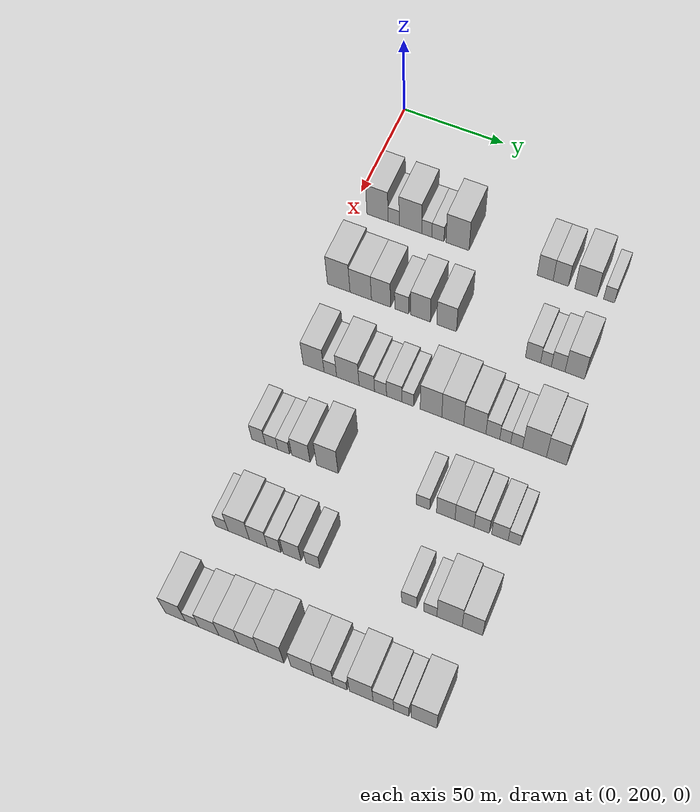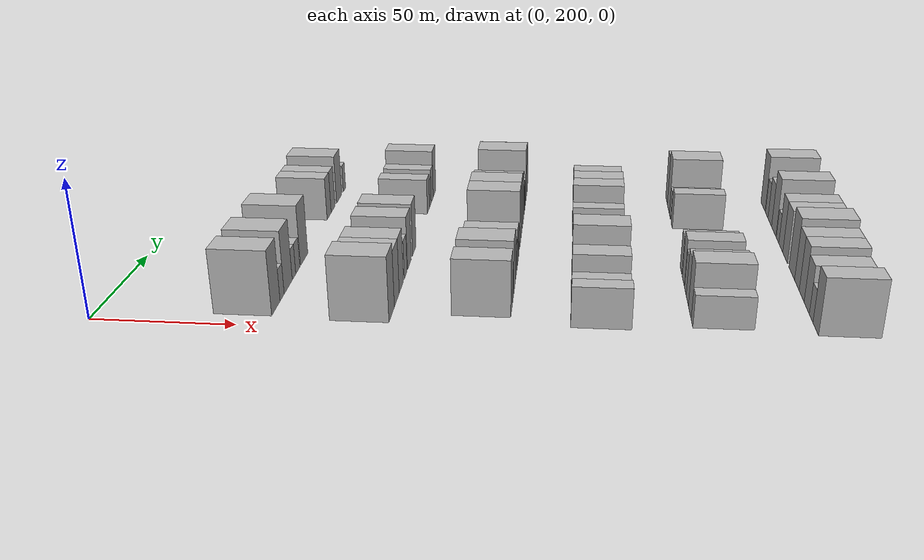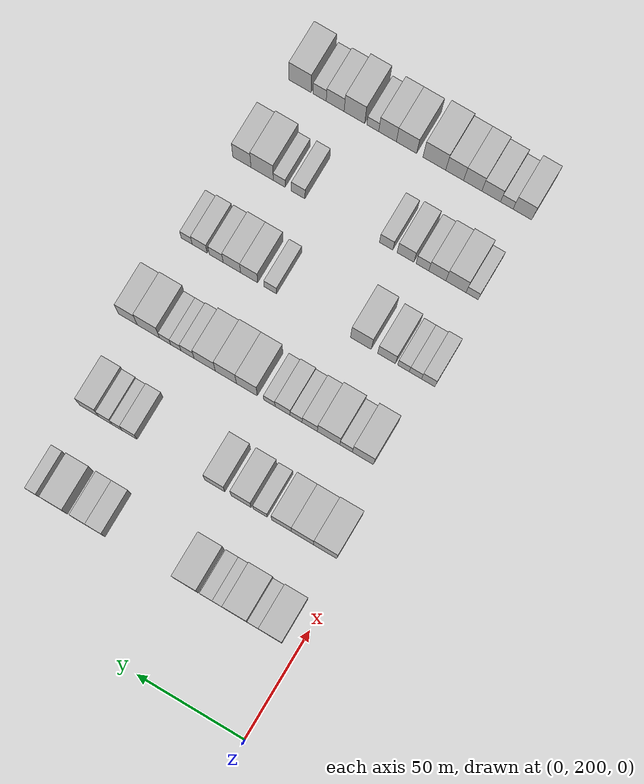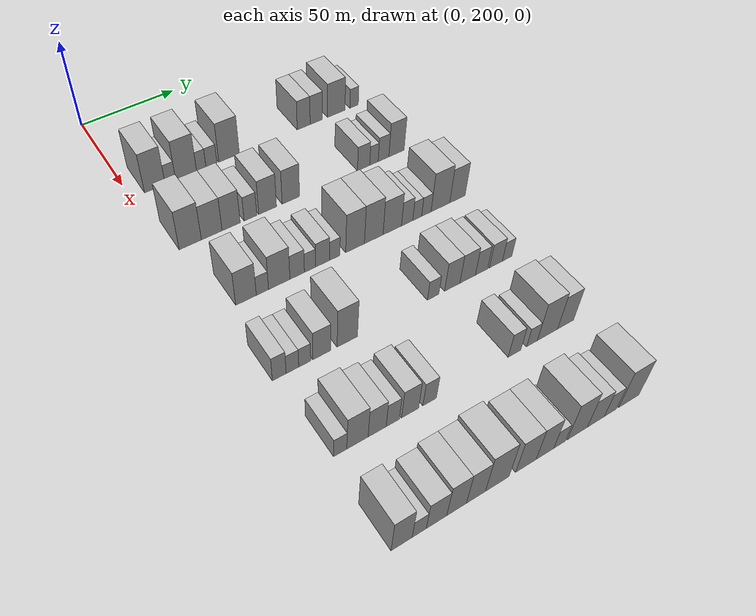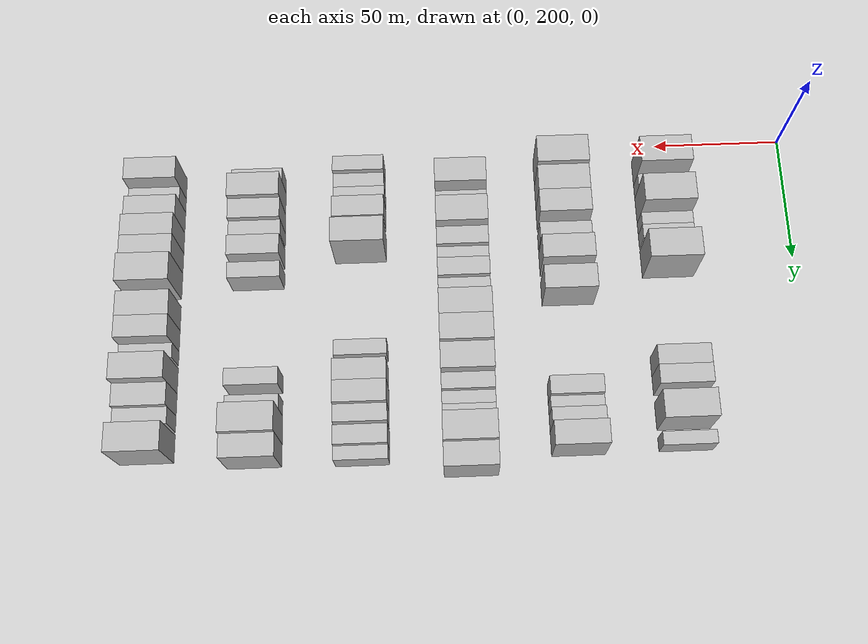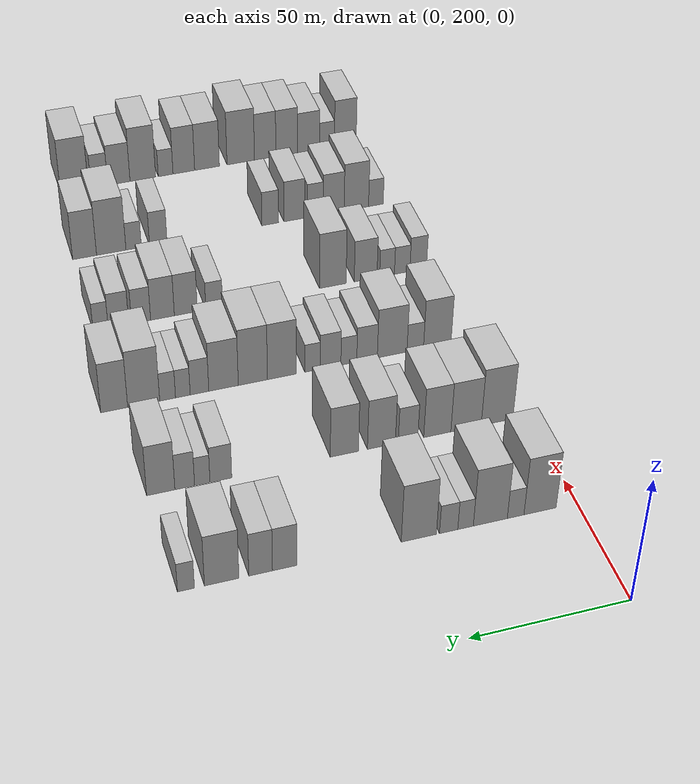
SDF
<sdf version="1.6">
 <world name="default">
  <model name="building_90">
   <static>1</static>
   <pose>50.0000 212.1653 0 0.000000 0.000000 0.000000</pose>
   <link name="link">
    <pose>0 0 12.00 0 0 0</pose>
    <collision name="collision"><geometry><box><size>20.0000 10.5243 24.0000</size></box></geometry></collision>
    <visual name="visual">
     <cast_shadows>0</cast_shadows>
     <geometry><box><size>20.0000 10.5243 24.0000</size></box></geometry>
     <material>
      <script>
       <uri>model://HANNAS_wall/materials/scripts</uri>
       <uri>model://HANNAS_wall/materials/textures</uri>
       <name>vrc/HANNAS_wall</name>
      </script>
     </material>
    </visual>
   </link>
  </model>
  <model name="building_91">
   <static>1</static>
   <pose>50.0000 220.1326 0 0.000000 0.000000 0.000000</pose>
   <link name="link">
    <pose>0 0 6.00 0 0 0</pose>
    <collision name="collision"><geometry><box><size>20.0000 5.4104 12.0000</size></box></geometry></collision>
    <visual name="visual">
     <cast_shadows>0</cast_shadows>
     <geometry><box><size>20.0000 5.4104 12.0000</size></box></geometry>
     <material>
      <script>
       <uri>model://HANNAS_wall/materials/scripts</uri>
       <uri>model://HANNAS_wall/materials/textures</uri>
       <name>vrc/HANNAS_wall</name>
      </script>
     </material>
    </visual>
   </link>
  </model>
  <model name="building_92">
   <static>1</static>
   <pose>50.0000 228.3330 0 0.000000 0.000000 0.000000</pose>
   <link name="link">
    <pose>0 0 12.00 0 0 0</pose>
    <collision name="collision"><geometry><box><size>20.0000 10.9905 24.0000</size></box></geometry></collision>
    <visual name="visual">
     <cast_shadows>0</cast_shadows>
     <geometry><box><size>20.0000 10.9905 24.0000</size></box></geometry>
     <material>
      <script>
       <uri>model://HANNAS_wall/materials/scripts</uri>
       <uri>model://HANNAS_wall/materials/textures</uri>
       <name>vrc/HANNAS_wall</name>
      </script>
     </material>
    </visual>
   </link>
  </model>
  <model name="building_93">
   <static>1</static>
   <pose>50.0000 236.3212 0 0.000000 0.000000 0.000000</pose>
   <link name="link">
    <pose>0 0 6.00 0 0 0</pose>
    <collision name="collision"><geometry><box><size>20.0000 4.9857 12.0000</size></box></geometry></collision>
    <visual name="visual">
     <cast_shadows>0</cast_shadows>
     <geometry><box><size>20.0000 4.9857 12.0000</size></box></geometry>
     <material>
      <script>
       <uri>model://HANNAS_wall/materials/scripts</uri>
       <uri>model://HANNAS_wall/materials/textures</uri>
       <name>vrc/HANNAS_wall</name>
      </script>
     </material>
    </visual>
   </link>
  </model>
  <model name="building_94">
   <static>1</static>
   <pose>50.0000 241.7361 0 0.000000 0.000000 0.000000</pose>
   <link name="link">
    <pose>0 0 6.00 0 0 0</pose>
    <collision name="collision"><geometry><box><size>20.0000 5.8442 12.0000</size></box></geometry></collision>
    <visual name="visual">
     <cast_shadows>0</cast_shadows>
     <geometry><box><size>20.0000 5.8442 12.0000</size></box></geometry>
     <material>
      <script>
       <uri>model://HANNAS_wall/materials/scripts</uri>
       <uri>model://HANNAS_wall/materials/textures</uri>
       <name>vrc/HANNAS_wall</name>
      </script>
     </material>
    </visual>
   </link>
  </model>
  <model name="building_95">
   <static>1</static>
   <pose>50.0000 251.2319 0 0.000000 0.000000 0.000000</pose>
   <link name="link">
    <pose>0 0 12.00 0 0 0</pose>
    <collision name="collision"><geometry><box><size>20.0000 11.1474 24.0000</size></box></geometry></collision>
    <visual name="visual">
     <cast_shadows>0</cast_shadows>
     <geometry><box><size>20.0000 11.1474 24.0000</size></box></geometry>
     <material>
      <script>
       <uri>model://HANNAS_wall/materials/scripts</uri>
       <uri>model://HANNAS_wall/materials/textures</uri>
       <name>vrc/HANNAS_wall</name>
      </script>
     </material>
    </visual>
   </link>
  </model>
  <model name="building_96">
   <static>1</static>
   <pose>50.0000 293.0761 0 0.000000 0.000000 0.000000</pose>
   <link name="link">
    <pose>0 0 9.00 0 0 0</pose>
    <collision name="collision"><geometry><box><size>20.0000 7.5137 18.0000</size></box></geometry></collision>
    <visual name="visual">
     <cast_shadows>0</cast_shadows>
     <geometry><box><size>20.0000 7.5137 18.0000</size></box></geometry>
     <material>
      <script>
       <uri>model://HANNAS_wall/materials/scripts</uri>
       <uri>model://HANNAS_wall/materials/textures</uri>
       <name>vrc/HANNAS_wall</name>
      </script>
     </material>
    </visual>
   </link>
  </model>
  <model name="building_97">
   <static>1</static>
   <pose>50.0000 300.4410 0 0.000000 0.000000 0.000000</pose>
   <link name="link">
    <pose>0 0 9.00 0 0 0</pose>
    <collision name="collision"><geometry><box><size>20.0000 7.2160 18.0000</size></box></geometry></collision>
    <visual name="visual">
     <cast_shadows>0</cast_shadows>
     <geometry><box><size>20.0000 7.2160 18.0000</size></box></geometry>
     <material>
      <script>
       <uri>model://HANNAS_wall/materials/scripts</uri>
       <uri>model://HANNAS_wall/materials/textures</uri>
       <name>vrc/HANNAS_wall</name>
      </script>
     </material>
    </visual>
   </link>
  </model>
  <model name="building_98">
   <static>1</static>
   <pose>50.0000 312.2567 0 0.000000 0.000000 0.000000</pose>
   <link name="link">
    <pose>0 0 10.50 0 0 0</pose>
    <collision name="collision"><geometry><box><size>20.0000 10.4154 21.0000</size></box></geometry></collision>
    <visual name="visual">
     <cast_shadows>0</cast_shadows>
     <geometry><box><size>20.0000 10.4154 21.0000</size></box></geometry>
     <material>
      <script>
       <uri>model://HANNAS_wall/materials/scripts</uri>
       <uri>model://HANNAS_wall/materials/textures</uri>
       <name>vrc/HANNAS_wall</name>
      </script>
     </material>
    </visual>
   </link>
  </model>
  <model name="building_99">
   <static>1</static>
   <pose>50.0000 323.0105 0 0.000000 0.000000 0.000000</pose>
   <link name="link">
    <pose>0 0 6.00 0 0 0</pose>
    <collision name="collision"><geometry><box><size>20.0000 5.0921 12.0000</size></box></geometry></collision>
    <visual name="visual">
     <cast_shadows>0</cast_shadows>
     <geometry><box><size>20.0000 5.0921 12.0000</size></box></geometry>
     <material>
      <script>
       <uri>model://HANNAS_wall/materials/scripts</uri>
       <uri>model://HANNAS_wall/materials/textures</uri>
       <name>vrc/HANNAS_wall</name>
      </script>
     </material>
    </visual>
   </link>
  </model>
  <model name="building_230">
   <static>1</static>
   <pose>90.0000 210.7653 0 0.000000 0.000000 0.000000</pose>
   <link name="link">
    <pose>0 0 12.00 0 0 0</pose>
    <collision name="collision"><geometry><box><size>20.0000 10.8817 24.0000</size></box></geometry></collision>
    <visual name="visual">
     <cast_shadows>0</cast_shadows>
     <geometry><box><size>20.0000 10.8817 24.0000</size></box></geometry>
     <material>
      <script>
       <uri>model://HANNAS_wall/materials/scripts</uri>
       <uri>model://HANNAS_wall/materials/textures</uri>
       <name>vrc/HANNAS_wall</name>
      </script>
     </material>
    </visual>
   </link>
  </model>
  <model name="building_231">
   <static>1</static>
   <pose>90.0000 221.3606 0 0.000000 0.000000 0.000000</pose>
   <link name="link">
    <pose>0 0 10.50 0 0 0</pose>
    <collision name="collision"><geometry><box><size>20.0000 10.3088 21.0000</size></box></geometry></collision>
    <visual name="visual">
     <cast_shadows>0</cast_shadows>
     <geometry><box><size>20.0000 10.3088 21.0000</size></box></geometry>
     <material>
      <script>
       <uri>model://HANNAS_wall/materials/scripts</uri>
       <uri>model://HANNAS_wall/materials/textures</uri>
       <name>vrc/HANNAS_wall</name>
      </script>
     </material>
    </visual>
   </link>
  </model>
  <model name="building_232">
   <static>1</static>
   <pose>90.0000 231.1039 0 0.000000 0.000000 0.000000</pose>
   <link name="link">
    <pose>0 0 10.50 0 0 0</pose>
    <collision name="collision"><geometry><box><size>20.0000 9.1779 21.0000</size></box></geometry></collision>
    <visual name="visual">
     <cast_shadows>0</cast_shadows>
     <geometry><box><size>20.0000 9.1779 21.0000</size></box></geometry>
     <material>
      <script>
       <uri>model://HANNAS_wall/materials/scripts</uri>
       <uri>model://HANNAS_wall/materials/textures</uri>
       <name>vrc/HANNAS_wall</name>
      </script>
     </material>
    </visual>
   </link>
  </model>
  <model name="building_233">
   <static>1</static>
   <pose>90.0000 240.9632 0 0.000000 0.000000 0.000000</pose>
   <link name="link">
    <pose>0 0 7.50 0 0 0</pose>
    <collision name="collision"><geometry><box><size>20.0000 6.5408 15.0000</size></box></geometry></collision>
    <visual name="visual">
     <cast_shadows>0</cast_shadows>
     <geometry><box><size>20.0000 6.5408 15.0000</size></box></geometry>
     <material>
      <script>
       <uri>model://HANNAS_wall/materials/scripts</uri>
       <uri>model://HANNAS_wall/materials/textures</uri>
       <name>vrc/HANNAS_wall</name>
      </script>
     </material>
    </visual>
   </link>
  </model>
  <model name="building_234">
   <static>1</static>
   <pose>90.0000 249.8733 0 0.000000 0.000000 0.000000</pose>
   <link name="link">
    <pose>0 0 10.50 0 0 0</pose>
    <collision name="collision"><geometry><box><size>20.0000 9.2793 21.0000</size></box></geometry></collision>
    <visual name="visual">
     <cast_shadows>0</cast_shadows>
     <geometry><box><size>20.0000 9.2793 21.0000</size></box></geometry>
     <material>
      <script>
       <uri>model://HANNAS_wall/materials/scripts</uri>
       <uri>model://HANNAS_wall/materials/textures</uri>
       <name>vrc/HANNAS_wall</name>
      </script>
     </material>
    </visual>
   </link>
  </model>
  <model name="building_235">
   <static>1</static>
   <pose>90.0000 262.1685 0 0.000000 0.000000 0.000000</pose>
   <link name="link">
    <pose>0 0 10.50 0 0 0</pose>
    <collision name="collision"><geometry><box><size>20.0000 9.3110 21.0000</size></box></geometry></collision>
    <visual name="visual">
     <cast_shadows>0</cast_shadows>
     <geometry><box><size>20.0000 9.3110 21.0000</size></box></geometry>
     <material>
      <script>
       <uri>model://HANNAS_wall/materials/scripts</uri>
       <uri>model://HANNAS_wall/materials/textures</uri>
       <name>vrc/HANNAS_wall</name>
      </script>
     </material>
    </visual>
   </link>
  </model>
  <model name="building_236">
   <static>1</static>
   <pose>90.0000 302.2914 0 0.000000 0.000000 0.000000</pose>
   <link name="link">
    <pose>0 0 7.50 0 0 0</pose>
    <collision name="collision"><geometry><box><size>20.0000 6.9783 15.0000</size></box></geometry></collision>
    <visual name="visual">
     <cast_shadows>0</cast_shadows>
     <geometry><box><size>20.0000 6.9783 15.0000</size></box></geometry>
     <material>
      <script>
       <uri>model://HANNAS_wall/materials/scripts</uri>
       <uri>model://HANNAS_wall/materials/textures</uri>
       <name>vrc/HANNAS_wall</name>
      </script>
     </material>
    </visual>
   </link>
  </model>
  <model name="building_237">
   <static>1</static>
   <pose>90.0000 308.2313 0 0.000000 0.000000 0.000000</pose>
   <link name="link">
    <pose>0 0 6.00 0 0 0</pose>
    <collision name="collision"><geometry><box><size>20.0000 4.9016 12.0000</size></box></geometry></collision>
    <visual name="visual">
     <cast_shadows>0</cast_shadows>
     <geometry><box><size>20.0000 4.9016 12.0000</size></box></geometry>
     <material>
      <script>
       <uri>model://HANNAS_wall/materials/scripts</uri>
       <uri>model://HANNAS_wall/materials/textures</uri>
       <name>vrc/HANNAS_wall</name>
      </script>
     </material>
    </visual>
   </link>
  </model>
  <model name="building_238">
   <static>1</static>
   <pose>90.0000 313.8000 0 0.000000 0.000000 0.000000</pose>
   <link name="link">
    <pose>0 0 7.50 0 0 0</pose>
    <collision name="collision"><geometry><box><size>20.0000 6.2359 15.0000</size></box></geometry></collision>
    <visual name="visual">
     <cast_shadows>0</cast_shadows>
     <geometry><box><size>20.0000 6.2359 15.0000</size></box></geometry>
     <material>
      <script>
       <uri>model://HANNAS_wall/materials/scripts</uri>
       <uri>model://HANNAS_wall/materials/textures</uri>
       <name>vrc/HANNAS_wall</name>
      </script>
     </material>
    </visual>
   </link>
  </model>
  <model name="building_239">
   <static>1</static>
   <pose>90.0000 321.3830 0 0.000000 0.000000 0.000000</pose>
   <link name="link">
    <pose>0 0 10.50 0 0 0</pose>
    <collision name="collision"><geometry><box><size>20.0000 8.9300 21.0000</size></box></geometry></collision>
    <visual name="visual">
     <cast_shadows>0</cast_shadows>
     <geometry><box><size>20.0000 8.9300 21.0000</size></box></geometry>
     <material>
      <script>
       <uri>model://HANNAS_wall/materials/scripts</uri>
       <uri>model://HANNAS_wall/materials/textures</uri>
       <name>vrc/HANNAS_wall</name>
      </script>
     </material>
    </visual>
   </link>
  </model>
  <model name="building_367">
   <static>1</static>
   <pose>130.0000 216.8760 0 0.000000 0.000000 0.000000</pose>
   <link name="link">
    <pose>0 0 10.50 0 0 0</pose>
    <collision name="collision"><geometry><box><size>20.0000 9.8227 21.0000</size></box></geometry></collision>
    <visual name="visual">
     <cast_shadows>0</cast_shadows>
     <geometry><box><size>20.0000 9.8227 21.0000</size></box></geometry>
     <material>
      <script>
       <uri>model://HANNAS_wall/materials/scripts</uri>
       <uri>model://HANNAS_wall/materials/textures</uri>
       <name>vrc/HANNAS_wall</name>
      </script>
     </material>
    </visual>
   </link>
  </model>
  <model name="building_368">
   <static>1</static>
   <pose>130.0000 224.7224 0 0.000000 0.000000 0.000000</pose>
   <link name="link">
    <pose>0 0 6.00 0 0 0</pose>
    <collision name="collision"><geometry><box><size>20.0000 5.8702 12.0000</size></box></geometry></collision>
    <visual name="visual">
     <cast_shadows>0</cast_shadows>
     <geometry><box><size>20.0000 5.8702 12.0000</size></box></geometry>
     <material>
      <script>
       <uri>model://HANNAS_wall/materials/scripts</uri>
       <uri>model://HANNAS_wall/materials/textures</uri>
       <name>vrc/HANNAS_wall</name>
      </script>
     </material>
    </visual>
   </link>
  </model>
  <model name="building_369">
   <static>1</static>
   <pose>130.0000 232.8961 0 0.000000 0.000000 0.000000</pose>
   <link name="link">
    <pose>0 0 10.50 0 0 0</pose>
    <collision name="collision"><geometry><box><size>20.0000 10.4772 21.0000</size></box></geometry></collision>
    <visual name="visual">
     <cast_shadows>0</cast_shadows>
     <geometry><box><size>20.0000 10.4772 21.0000</size></box></geometry>
     <material>
      <script>
       <uri>model://HANNAS_wall/materials/scripts</uri>
       <uri>model://HANNAS_wall/materials/textures</uri>
       <name>vrc/HANNAS_wall</name>
      </script>
     </material>
    </visual>
   </link>
  </model>
  <model name="building_370">
   <static>1</static>
   <pose>130.0000 241.7338 0 0.000000 0.000000 0.000000</pose>
   <link name="link">
    <pose>0 0 7.50 0 0 0</pose>
    <collision name="collision"><geometry><box><size>20.0000 7.1983 15.0000</size></box></geometry></collision>
    <visual name="visual">
     <cast_shadows>0</cast_shadows>
     <geometry><box><size>20.0000 7.1983 15.0000</size></box></geometry>
     <material>
      <script>
       <uri>model://HANNAS_wall/materials/scripts</uri>
       <uri>model://HANNAS_wall/materials/textures</uri>
       <name>vrc/HANNAS_wall</name>
      </script>
     </material>
    </visual>
   </link>
  </model>
  <model name="building_371">
   <static>1</static>
   <pose>130.0000 248.1066 0 0.000000 0.000000 0.000000</pose>
   <link name="link">
    <pose>0 0 6.00 0 0 0</pose>
    <collision name="collision"><geometry><box><size>20.0000 5.5472 12.0000</size></box></geometry></collision>
    <visual name="visual">
     <cast_shadows>0</cast_shadows>
     <geometry><box><size>20.0000 5.5472 12.0000</size></box></geometry>
     <material>
      <script>
       <uri>model://HANNAS_wall/materials/scripts</uri>
       <uri>model://HANNAS_wall/materials/textures</uri>
       <name>vrc/HANNAS_wall</name>
      </script>
     </material>
    </visual>
   </link>
  </model>
  <model name="building_372">
   <static>1</static>
   <pose>130.0000 254.4656 0 0.000000 0.000000 0.000000</pose>
   <link name="link">
    <pose>0 0 7.50 0 0 0</pose>
    <collision name="collision"><geometry><box><size>20.0000 7.1709 15.0000</size></box></geometry></collision>
    <visual name="visual">
     <cast_shadows>0</cast_shadows>
     <geometry><box><size>20.0000 7.1709 15.0000</size></box></geometry>
     <material>
      <script>
       <uri>model://HANNAS_wall/materials/scripts</uri>
       <uri>model://HANNAS_wall/materials/textures</uri>
       <name>vrc/HANNAS_wall</name>
      </script>
     </material>
    </visual>
   </link>
  </model>
  <model name="building_373">
   <static>1</static>
   <pose>130.0000 260.7199 0 0.000000 0.000000 0.000000</pose>
   <link name="link">
    <pose>0 0 6.00 0 0 0</pose>
    <collision name="collision"><geometry><box><size>20.0000 5.3376 12.0000</size></box></geometry></collision>
    <visual name="visual">
     <cast_shadows>0</cast_shadows>
     <geometry><box><size>20.0000 5.3376 12.0000</size></box></geometry>
     <material>
      <script>
       <uri>model://HANNAS_wall/materials/scripts</uri>
       <uri>model://HANNAS_wall/materials/textures</uri>
       <name>vrc/HANNAS_wall</name>
      </script>
     </material>
    </visual>
   </link>
  </model>
  <model name="building_374">
   <static>1</static>
   <pose>130.0000 271.3065 0 0.000000 0.000000 0.000000</pose>
   <link name="link">
    <pose>0 0 12.00 0 0 0</pose>
    <collision name="collision"><geometry><box><size>20.0000 9.8356 24.0000</size></box></geometry></collision>
    <visual name="visual">
     <cast_shadows>0</cast_shadows>
     <geometry><box><size>20.0000 9.8356 24.0000</size></box></geometry>
     <material>
      <script>
       <uri>model://HANNAS_wall/materials/scripts</uri>
       <uri>model://HANNAS_wall/materials/textures</uri>
       <name>vrc/HANNAS_wall</name>
      </script>
     </material>
    </visual>
   </link>
  </model>
  <model name="building_375">
   <static>1</static>
   <pose>130.0000 281.1963 0 0.000000 0.000000 0.000000</pose>
   <link name="link">
    <pose>0 0 12.00 0 0 0</pose>
    <collision name="collision"><geometry><box><size>20.0000 9.9439 24.0000</size></box></geometry></collision>
    <visual name="visual">
     <cast_shadows>0</cast_shadows>
     <geometry><box><size>20.0000 9.9439 24.0000</size></box></geometry>
     <material>
      <script>
       <uri>model://HANNAS_wall/materials/scripts</uri>
       <uri>model://HANNAS_wall/materials/textures</uri>
       <name>vrc/HANNAS_wall</name>
      </script>
     </material>
    </visual>
   </link>
  </model>
  <model name="building_376">
   <static>1</static>
   <pose>130.0000 291.1658 0 0.000000 0.000000 0.000000</pose>
   <link name="link">
    <pose>0 0 10.50 0 0 0</pose>
    <collision name="collision"><geometry><box><size>20.0000 9.9951 21.0000</size></box></geometry></collision>
    <visual name="visual">
     <cast_shadows>0</cast_shadows>
     <geometry><box><size>20.0000 9.9951 21.0000</size></box></geometry>
     <material>
      <script>
       <uri>model://HANNAS_wall/materials/scripts</uri>
       <uri>model://HANNAS_wall/materials/textures</uri>
       <name>vrc/HANNAS_wall</name>
      </script>
     </material>
    </visual>
   </link>
  </model>
  <model name="building_377">
   <static>1</static>
   <pose>130.0000 299.2905 0 0.000000 0.000000 0.000000</pose>
   <link name="link">
    <pose>0 0 7.50 0 0 0</pose>
    <collision name="collision"><geometry><box><size>20.0000 6.2543 15.0000</size></box></geometry></collision>
    <visual name="visual">
     <cast_shadows>0</cast_shadows>
     <geometry><box><size>20.0000 6.2543 15.0000</size></box></geometry>
     <material>
      <script>
       <uri>model://HANNAS_wall/materials/scripts</uri>
       <uri>model://HANNAS_wall/materials/textures</uri>
       <name>vrc/HANNAS_wall</name>
      </script>
     </material>
    </visual>
   </link>
  </model>
  <model name="building_378">
   <static>1</static>
   <pose>130.0000 304.8769 0 0.000000 0.000000 0.000000</pose>
   <link name="link">
    <pose>0 0 6.00 0 0 0</pose>
    <collision name="collision"><geometry><box><size>20.0000 4.9185 12.0000</size></box></geometry></collision>
    <visual name="visual">
     <cast_shadows>0</cast_shadows>
     <geometry><box><size>20.0000 4.9185 12.0000</size></box></geometry>
     <material>
      <script>
       <uri>model://HANNAS_wall/materials/scripts</uri>
       <uri>model://HANNAS_wall/materials/textures</uri>
       <name>vrc/HANNAS_wall</name>
      </script>
     </material>
    </visual>
   </link>
  </model>
  <model name="building_379">
   <static>1</static>
   <pose>130.0000 309.9766 0 0.000000 0.000000 0.000000</pose>
   <link name="link">
    <pose>0 0 6.00 0 0 0</pose>
    <collision name="collision"><geometry><box><size>20.0000 5.2808 12.0000</size></box></geometry></collision>
    <visual name="visual">
     <cast_shadows>0</cast_shadows>
     <geometry><box><size>20.0000 5.2808 12.0000</size></box></geometry>
     <material>
      <script>
       <uri>model://HANNAS_wall/materials/scripts</uri>
       <uri>model://HANNAS_wall/materials/textures</uri>
       <name>vrc/HANNAS_wall</name>
      </script>
     </material>
    </visual>
   </link>
  </model>
  <model name="building_380">
   <static>1</static>
   <pose>130.0000 317.9260 0 0.000000 0.000000 0.000000</pose>
   <link name="link">
    <pose>0 0 12.00 0 0 0</pose>
    <collision name="collision"><geometry><box><size>20.0000 10.6178 24.0000</size></box></geometry></collision>
    <visual name="visual">
     <cast_shadows>0</cast_shadows>
     <geometry><box><size>20.0000 10.6178 24.0000</size></box></geometry>
     <material>
      <script>
       <uri>model://HANNAS_wall/materials/scripts</uri>
       <uri>model://HANNAS_wall/materials/textures</uri>
       <name>vrc/HANNAS_wall</name>
      </script>
     </material>
    </visual>
   </link>
  </model>
  <model name="building_381">
   <static>1</static>
   <pose>130.0000 327.6799 0 0.000000 0.000000 0.000000</pose>
   <link name="link">
    <pose>0 0 10.50 0 0 0</pose>
    <collision name="collision"><geometry><box><size>20.0000 8.8901 21.0000</size></box></geometry></collision>
    <visual name="visual">
     <cast_shadows>0</cast_shadows>
     <geometry><box><size>20.0000 8.8901 21.0000</size></box></geometry>
     <material>
      <script>
       <uri>model://HANNAS_wall/materials/scripts</uri>
       <uri>model://HANNAS_wall/materials/textures</uri>
       <name>vrc/HANNAS_wall</name>
      </script>
     </material>
    </visual>
   </link>
  </model>
  <model name="building_502">
   <static>1</static>
   <pose>170.0000 209.8028 0 0.000000 0.000000 0.000000</pose>
   <link name="link">
    <pose>0 0 7.50 0 0 0</pose>
    <collision name="collision"><geometry><box><size>20.0000 6.2233 15.0000</size></box></geometry></collision>
    <visual name="visual">
     <cast_shadows>0</cast_shadows>
     <geometry><box><size>20.0000 6.2233 15.0000</size></box></geometry>
     <material>
      <script>
       <uri>model://HANNAS_wall/materials/scripts</uri>
       <uri>model://HANNAS_wall/materials/textures</uri>
       <name>vrc/HANNAS_wall</name>
      </script>
     </material>
    </visual>
   </link>
  </model>
  <model name="building_503">
   <static>1</static>
   <pose>170.0000 215.7873 0 0.000000 0.000000 0.000000</pose>
   <link name="link">
    <pose>0 0 6.00 0 0 0</pose>
    <collision name="collision"><geometry><box><size>20.0000 5.7457 12.0000</size></box></geometry></collision>
    <visual name="visual">
     <cast_shadows>0</cast_shadows>
     <geometry><box><size>20.0000 5.7457 12.0000</size></box></geometry>
     <material>
      <script>
       <uri>model://HANNAS_wall/materials/scripts</uri>
       <uri>model://HANNAS_wall/materials/textures</uri>
       <name>vrc/HANNAS_wall</name>
      </script>
     </material>
    </visual>
   </link>
  </model>
  <model name="building_504">
   <static>1</static>
   <pose>170.0000 221.4043 0 0.000000 0.000000 0.000000</pose>
   <link name="link">
    <pose>0 0 6.00 0 0 0</pose>
    <collision name="collision"><geometry><box><size>20.0000 5.4882 12.0000</size></box></geometry></collision>
    <visual name="visual">
     <cast_shadows>0</cast_shadows>
     <geometry><box><size>20.0000 5.4882 12.0000</size></box></geometry>
     <material>
      <script>
       <uri>model://HANNAS_wall/materials/scripts</uri>
       <uri>model://HANNAS_wall/materials/textures</uri>
       <name>vrc/HANNAS_wall</name>
      </script>
     </material>
    </visual>
   </link>
  </model>
  <model name="building_505">
   <static>1</static>
   <pose>170.0000 229.3457 0 0.000000 0.000000 0.000000</pose>
   <link name="link">
    <pose>0 0 9.00 0 0 0</pose>
    <collision name="collision"><geometry><box><size>20.0000 8.3947 18.0000</size></box></geometry></collision>
    <visual name="visual">
     <cast_shadows>0</cast_shadows>
     <geometry><box><size>20.0000 8.3947 18.0000</size></box></geometry>
     <material>
      <script>
       <uri>model://HANNAS_wall/materials/scripts</uri>
       <uri>model://HANNAS_wall/materials/textures</uri>
       <name>vrc/HANNAS_wall</name>
      </script>
     </material>
    </visual>
   </link>
  </model>
  <model name="building_506">
   <static>1</static>
   <pose>170.0000 241.4226 0 0.000000 0.000000 0.000000</pose>
   <link name="link">
    <pose>0 0 12.00 0 0 0</pose>
    <collision name="collision"><geometry><box><size>20.0000 9.7590 24.0000</size></box></geometry></collision>
    <visual name="visual">
     <cast_shadows>0</cast_shadows>
     <geometry><box><size>20.0000 9.7590 24.0000</size></box></geometry>
     <material>
      <script>
       <uri>model://HANNAS_wall/materials/scripts</uri>
       <uri>model://HANNAS_wall/materials/textures</uri>
       <name>vrc/HANNAS_wall</name>
      </script>
     </material>
    </visual>
   </link>
  </model>
  <model name="building_507">
   <static>1</static>
   <pose>170.0000 284.2374 0 0.000000 0.000000 0.000000</pose>
   <link name="link">
    <pose>0 0 6.00 0 0 0</pose>
    <collision name="collision"><geometry><box><size>20.0000 5.9569 12.0000</size></box></geometry></collision>
    <visual name="visual">
     <cast_shadows>0</cast_shadows>
     <geometry><box><size>20.0000 5.9569 12.0000</size></box></geometry>
     <material>
      <script>
       <uri>model://HANNAS_wall/materials/scripts</uri>
       <uri>model://HANNAS_wall/materials/textures</uri>
       <name>vrc/HANNAS_wall</name>
      </script>
     </material>
    </visual>
   </link>
  </model>
  <model name="building_508">
   <static>1</static>
   <pose>170.0000 294.2799 0 0.000000 0.000000 0.000000</pose>
   <link name="link">
    <pose>0 0 9.00 0 0 0</pose>
    <collision name="collision"><geometry><box><size>20.0000 8.1281 18.0000</size></box></geometry></collision>
    <visual name="visual">
     <cast_shadows>0</cast_shadows>
     <geometry><box><size>20.0000 8.1281 18.0000</size></box></geometry>
     <material>
      <script>
       <uri>model://HANNAS_wall/materials/scripts</uri>
       <uri>model://HANNAS_wall/materials/textures</uri>
       <name>vrc/HANNAS_wall</name>
      </script>
     </material>
    </visual>
   </link>
  </model>
  <model name="building_509">
   <static>1</static>
   <pose>170.0000 302.5095 0 0.000000 0.000000 0.000000</pose>
   <link name="link">
    <pose>0 0 9.00 0 0 0</pose>
    <collision name="collision"><geometry><box><size>20.0000 8.3311 18.0000</size></box></geometry></collision>
    <visual name="visual">
     <cast_shadows>0</cast_shadows>
     <geometry><box><size>20.0000 8.3311 18.0000</size></box></geometry>
     <material>
      <script>
       <uri>model://HANNAS_wall/materials/scripts</uri>
       <uri>model://HANNAS_wall/materials/textures</uri>
       <name>vrc/HANNAS_wall</name>
      </script>
     </material>
    </visual>
   </link>
  </model>
  <model name="building_510">
   <static>1</static>
   <pose>170.0000 309.9924 0 0.000000 0.000000 0.000000</pose>
   <link name="link">
    <pose>0 0 7.50 0 0 0</pose>
    <collision name="collision"><geometry><box><size>20.0000 6.6347 15.0000</size></box></geometry></collision>
    <visual name="visual">
     <cast_shadows>0</cast_shadows>
     <geometry><box><size>20.0000 6.6347 15.0000</size></box></geometry>
     <material>
      <script>
       <uri>model://HANNAS_wall/materials/scripts</uri>
       <uri>model://HANNAS_wall/materials/textures</uri>
       <name>vrc/HANNAS_wall</name>
      </script>
     </material>
    </visual>
   </link>
  </model>
  <model name="building_511">
   <static>1</static>
   <pose>170.0000 317.8950 0 0.000000 0.000000 0.000000</pose>
   <link name="link">
    <pose>0 0 7.50 0 0 0</pose>
    <collision name="collision"><geometry><box><size>20.0000 7.1706 15.0000</size></box></geometry></collision>
    <visual name="visual">
     <cast_shadows>0</cast_shadows>
     <geometry><box><size>20.0000 7.1706 15.0000</size></box></geometry>
     <material>
      <script>
       <uri>model://HANNAS_wall/materials/scripts</uri>
       <uri>model://HANNAS_wall/materials/textures</uri>
       <name>vrc/HANNAS_wall</name>
      </script>
     </material>
    </visual>
   </link>
  </model>
  <model name="building_512">
   <static>1</static>
   <pose>170.0000 324.0987 0 0.000000 0.000000 0.000000</pose>
   <link name="link">
    <pose>0 0 6.00 0 0 0</pose>
    <collision name="collision"><geometry><box><size>20.0000 5.2367 12.0000</size></box></geometry></collision>
    <visual name="visual">
     <cast_shadows>0</cast_shadows>
     <geometry><box><size>20.0000 5.2367 12.0000</size></box></geometry>
     <material>
      <script>
       <uri>model://HANNAS_wall/materials/scripts</uri>
       <uri>model://HANNAS_wall/materials/textures</uri>
       <name>vrc/HANNAS_wall</name>
      </script>
     </material>
    </visual>
   </link>
  </model>
  <model name="building_642">
   <static>1</static>
   <pose>210.0000 212.4699 0 0.000000 0.000000 0.000000</pose>
   <link name="link">
    <pose>0 0 6.00 0 0 0</pose>
    <collision name="collision"><geometry><box><size>20.0000 5.7114 12.0000</size></box></geometry></collision>
    <visual name="visual">
     <cast_shadows>0</cast_shadows>
     <geometry><box><size>20.0000 5.7114 12.0000</size></box></geometry>
     <material>
      <script>
       <uri>model://HANNAS_wall/materials/scripts</uri>
       <uri>model://HANNAS_wall/materials/textures</uri>
       <name>vrc/HANNAS_wall</name>
      </script>
     </material>
    </visual>
   </link>
  </model>
  <model name="building_643">
   <static>1</static>
   <pose>210.0000 220.0598 0 0.000000 0.000000 0.000000</pose>
   <link name="link">
    <pose>0 0 10.50 0 0 0</pose>
    <collision name="collision"><geometry><box><size>20.0000 9.4686 21.0000</size></box></geometry></collision>
    <visual name="visual">
     <cast_shadows>0</cast_shadows>
     <geometry><box><size>20.0000 9.4686 21.0000</size></box></geometry>
     <material>
      <script>
       <uri>model://HANNAS_wall/materials/scripts</uri>
       <uri>model://HANNAS_wall/materials/textures</uri>
       <name>vrc/HANNAS_wall</name>
      </script>
     </material>
    </visual>
   </link>
  </model>
  <model name="building_644">
   <static>1</static>
   <pose>210.0000 228.8368 0 0.000000 0.000000 0.000000</pose>
   <link name="link">
    <pose>0 0 9.00 0 0 0</pose>
    <collision name="collision"><geometry><box><size>20.0000 8.0855 18.0000</size></box></geometry></collision>
    <visual name="visual">
     <cast_shadows>0</cast_shadows>
     <geometry><box><size>20.0000 8.0855 18.0000</size></box></geometry>
     <material>
      <script>
       <uri>model://HANNAS_wall/materials/scripts</uri>
       <uri>model://HANNAS_wall/materials/textures</uri>
       <name>vrc/HANNAS_wall</name>
      </script>
     </material>
    </visual>
   </link>
  </model>
  <model name="building_645">
   <static>1</static>
   <pose>210.0000 235.9042 0 0.000000 0.000000 0.000000</pose>
   <link name="link">
    <pose>0 0 7.50 0 0 0</pose>
    <collision name="collision"><geometry><box><size>20.0000 6.0491 15.0000</size></box></geometry></collision>
    <visual name="visual">
     <cast_shadows>0</cast_shadows>
     <geometry><box><size>20.0000 6.0491 15.0000</size></box></geometry>
     <material>
      <script>
       <uri>model://HANNAS_wall/materials/scripts</uri>
       <uri>model://HANNAS_wall/materials/textures</uri>
       <name>vrc/HANNAS_wall</name>
      </script>
     </material>
    </visual>
   </link>
  </model>
  <model name="building_646">
   <static>1</static>
   <pose>210.0000 243.8957 0 0.000000 0.000000 0.000000</pose>
   <link name="link">
    <pose>0 0 9.00 0 0 0</pose>
    <collision name="collision"><geometry><box><size>20.0000 7.9340 18.0000</size></box></geometry></collision>
    <visual name="visual">
     <cast_shadows>0</cast_shadows>
     <geometry><box><size>20.0000 7.9340 18.0000</size></box></geometry>
     <material>
      <script>
       <uri>model://HANNAS_wall/materials/scripts</uri>
       <uri>model://HANNAS_wall/materials/textures</uri>
       <name>vrc/HANNAS_wall</name>
      </script>
     </material>
    </visual>
   </link>
  </model>
  <model name="building_647">
   <static>1</static>
   <pose>210.0000 253.0340 0 0.000000 0.000000 0.000000</pose>
   <link name="link">
    <pose>0 0 7.50 0 0 0</pose>
    <collision name="collision"><geometry><box><size>20.0000 6.3425 15.0000</size></box></geometry></collision>
    <visual name="visual">
     <cast_shadows>0</cast_shadows>
     <geometry><box><size>20.0000 6.3425 15.0000</size></box></geometry>
     <material>
      <script>
       <uri>model://HANNAS_wall/materials/scripts</uri>
       <uri>model://HANNAS_wall/materials/textures</uri>
       <name>vrc/HANNAS_wall</name>
      </script>
     </material>
    </visual>
   </link>
  </model>
  <model name="building_648">
   <static>1</static>
   <pose>210.0000 294.8965 0 0.000000 0.000000 0.000000</pose>
   <link name="link">
    <pose>0 0 7.50 0 0 0</pose>
    <collision name="collision"><geometry><box><size>20.0000 6.4608 15.0000</size></box></geometry></collision>
    <visual name="visual">
     <cast_shadows>0</cast_shadows>
     <geometry><box><size>20.0000 6.4608 15.0000</size></box></geometry>
     <material>
      <script>
       <uri>model://HANNAS_wall/materials/scripts</uri>
       <uri>model://HANNAS_wall/materials/textures</uri>
       <name>vrc/HANNAS_wall</name>
      </script>
     </material>
    </visual>
   </link>
  </model>
  <model name="building_649">
   <static>1</static>
   <pose>210.0000 303.9589 0 0.000000 0.000000 0.000000</pose>
   <link name="link">
    <pose>0 0 6.00 0 0 0</pose>
    <collision name="collision"><geometry><box><size>20.0000 5.6642 12.0000</size></box></geometry></collision>
    <visual name="visual">
     <cast_shadows>0</cast_shadows>
     <geometry><box><size>20.0000 5.6642 12.0000</size></box></geometry>
     <material>
      <script>
       <uri>model://HANNAS_wall/materials/scripts</uri>
       <uri>model://HANNAS_wall/materials/textures</uri>
       <name>vrc/HANNAS_wall</name>
      </script>
     </material>
    </visual>
   </link>
  </model>
  <model name="building_650">
   <static>1</static>
   <pose>210.0000 312.1442 0 0.000000 0.000000 0.000000</pose>
   <link name="link">
    <pose>0 0 12.00 0 0 0</pose>
    <collision name="collision"><geometry><box><size>20.0000 10.7064 24.0000</size></box></geometry></collision>
    <visual name="visual">
     <cast_shadows>0</cast_shadows>
     <geometry><box><size>20.0000 10.7064 24.0000</size></box></geometry>
     <material>
      <script>
       <uri>model://HANNAS_wall/materials/scripts</uri>
       <uri>model://HANNAS_wall/materials/textures</uri>
       <name>vrc/HANNAS_wall</name>
      </script>
     </material>
    </visual>
   </link>
  </model>
  <model name="building_651">
   <static>1</static>
   <pose>210.0000 321.8377 0 0.000000 0.000000 0.000000</pose>
   <link name="link">
    <pose>0 0 10.50 0 0 0</pose>
    <collision name="collision"><geometry><box><size>20.0000 8.6804 21.0000</size></box></geometry></collision>
    <visual name="visual">
     <cast_shadows>0</cast_shadows>
     <geometry><box><size>20.0000 8.6804 21.0000</size></box></geometry>
     <material>
      <script>
       <uri>model://HANNAS_wall/materials/scripts</uri>
       <uri>model://HANNAS_wall/materials/textures</uri>
       <name>vrc/HANNAS_wall</name>
      </script>
     </material>
    </visual>
   </link>
  </model>
  <model name="building_778">
   <static>1</static>
   <pose>250.0000 211.8377 0 0.000000 0.000000 0.000000</pose>
   <link name="link">
    <pose>0 0 10.50 0 0 0</pose>
    <collision name="collision"><geometry><box><size>20.0000 8.7903 21.0000</size></box></geometry></collision>
    <visual name="visual">
     <cast_shadows>0</cast_shadows>
     <geometry><box><size>20.0000 8.7903 21.0000</size></box></geometry>
     <material>
      <script>
       <uri>model://HANNAS_wall/materials/scripts</uri>
       <uri>model://HANNAS_wall/materials/textures</uri>
       <name>vrc/HANNAS_wall</name>
      </script>
     </material>
    </visual>
   </link>
  </model>
  <model name="building_779">
   <static>1</static>
   <pose>250.0000 219.2090 0 0.000000 0.000000 0.000000</pose>
   <link name="link">
    <pose>0 0 6.00 0 0 0</pose>
    <collision name="collision"><geometry><box><size>20.0000 5.9524 12.0000</size></box></geometry></collision>
    <visual name="visual">
     <cast_shadows>0</cast_shadows>
     <geometry><box><size>20.0000 5.9524 12.0000</size></box></geometry>
     <material>
      <script>
       <uri>model://HANNAS_wall/materials/scripts</uri>
       <uri>model://HANNAS_wall/materials/textures</uri>
       <name>vrc/HANNAS_wall</name>
      </script>
     </material>
    </visual>
   </link>
  </model>
  <model name="building_780">
   <static>1</static>
   <pose>250.0000 226.5991 0 0.000000 0.000000 0.000000</pose>
   <link name="link">
    <pose>0 0 9.00 0 0 0</pose>
    <collision name="collision"><geometry><box><size>20.0000 8.8277 18.0000</size></box></geometry></collision>
    <visual name="visual">
     <cast_shadows>0</cast_shadows>
     <geometry><box><size>20.0000 8.8277 18.0000</size></box></geometry>
     <material>
      <script>
       <uri>model://HANNAS_wall/materials/scripts</uri>
       <uri>model://HANNAS_wall/materials/textures</uri>
       <name>vrc/HANNAS_wall</name>
      </script>
     </material>
    </visual>
   </link>
  </model>
  <model name="building_781">
   <static>1</static>
   <pose>250.0000 235.3422 0 0.000000 0.000000 0.000000</pose>
   <link name="link">
    <pose>0 0 10.50 0 0 0</pose>
    <collision name="collision"><geometry><box><size>20.0000 8.6585 21.0000</size></box></geometry></collision>
    <visual name="visual">
     <cast_shadows>0</cast_shadows>
     <geometry><box><size>20.0000 8.6585 21.0000</size></box></geometry>
     <material>
      <script>
       <uri>model://HANNAS_wall/materials/scripts</uri>
       <uri>model://HANNAS_wall/materials/textures</uri>
       <name>vrc/HANNAS_wall</name>
      </script>
     </material>
    </visual>
   </link>
  </model>
  <model name="building_782">
   <static>1</static>
   <pose>250.0000 243.9230 0 0.000000 0.000000 0.000000</pose>
   <link name="link">
    <pose>0 0 10.50 0 0 0</pose>
    <collision name="collision"><geometry><box><size>20.0000 8.5030 21.0000</size></box></geometry></collision>
    <visual name="visual">
     <cast_shadows>0</cast_shadows>
     <geometry><box><size>20.0000 8.5030 21.0000</size></box></geometry>
     <material>
      <script>
       <uri>model://HANNAS_wall/materials/scripts</uri>
       <uri>model://HANNAS_wall/materials/textures</uri>
       <name>vrc/HANNAS_wall</name>
      </script>
     </material>
    </visual>
   </link>
  </model>
  <model name="building_783">
   <static>1</static>
   <pose>250.0000 253.5952 0 0.000000 0.000000 0.000000</pose>
   <link name="link">
    <pose>0 0 12.00 0 0 0</pose>
    <collision name="collision"><geometry><box><size>20.0000 10.8415 24.0000</size></box></geometry></collision>
    <visual name="visual">
     <cast_shadows>0</cast_shadows>
     <geometry><box><size>20.0000 10.8415 24.0000</size></box></geometry>
     <material>
      <script>
       <uri>model://HANNAS_wall/materials/scripts</uri>
       <uri>model://HANNAS_wall/materials/textures</uri>
       <name>vrc/HANNAS_wall</name>
      </script>
     </material>
    </visual>
   </link>
  </model>
  <model name="building_784">
   <static>1</static>
   <pose>250.0000 266.8539 0 0.000000 0.000000 0.000000</pose>
   <link name="link">
    <pose>0 0 10.50 0 0 0</pose>
    <collision name="collision"><geometry><box><size>20.0000 9.6759 21.0000</size></box></geometry></collision>
    <visual name="visual">
     <cast_shadows>0</cast_shadows>
     <geometry><box><size>20.0000 9.6759 21.0000</size></box></geometry>
     <material>
      <script>
       <uri>model://HANNAS_wall/materials/scripts</uri>
       <uri>model://HANNAS_wall/materials/textures</uri>
       <name>vrc/HANNAS_wall</name>
      </script>
     </material>
    </visual>
   </link>
  </model>
  <model name="building_785">
   <static>1</static>
   <pose>250.0000 275.9072 0 0.000000 0.000000 0.000000</pose>
   <link name="link">
    <pose>0 0 10.50 0 0 0</pose>
    <collision name="collision"><geometry><box><size>20.0000 8.4307 21.0000</size></box></geometry></collision>
    <visual name="visual">
     <cast_shadows>0</cast_shadows>
     <geometry><box><size>20.0000 8.4307 21.0000</size></box></geometry>
     <material>
      <script>
       <uri>model://HANNAS_wall/materials/scripts</uri>
       <uri>model://HANNAS_wall/materials/textures</uri>
       <name>vrc/HANNAS_wall</name>
      </script>
     </material>
    </visual>
   </link>
  </model>
  <model name="building_786">
   <static>1</static>
   <pose>250.0000 282.9767 0 0.000000 0.000000 0.000000</pose>
   <link name="link">
    <pose>0 0 6.00 0 0 0</pose>
    <collision name="collision"><geometry><box><size>20.0000 5.7084 12.0000</size></box></geometry></collision>
    <visual name="visual">
     <cast_shadows>0</cast_shadows>
     <geometry><box><size>20.0000 5.7084 12.0000</size></box></geometry>
     <material>
      <script>
       <uri>model://HANNAS_wall/materials/scripts</uri>
       <uri>model://HANNAS_wall/materials/textures</uri>
       <name>vrc/HANNAS_wall</name>
      </script>
     </material>
    </visual>
   </link>
  </model>
  <model name="building_787">
   <static>1</static>
   <pose>250.0000 291.7725 0 0.000000 0.000000 0.000000</pose>
   <link name="link">
    <pose>0 0 12.00 0 0 0</pose>
    <collision name="collision"><geometry><box><size>20.0000 9.8830 24.0000</size></box></geometry></collision>
    <visual name="visual">
     <cast_shadows>0</cast_shadows>
     <geometry><box><size>20.0000 9.8830 24.0000</size></box></geometry>
     <material>
      <script>
       <uri>model://HANNAS_wall/materials/scripts</uri>
       <uri>model://HANNAS_wall/materials/textures</uri>
       <name>vrc/HANNAS_wall</name>
      </script>
     </material>
    </visual>
   </link>
  </model>
  <model name="building_788">
   <static>1</static>
   <pose>250.0000 300.9964 0 0.000000 0.000000 0.000000</pose>
   <link name="link">
    <pose>0 0 9.00 0 0 0</pose>
    <collision name="collision"><geometry><box><size>20.0000 8.5648 18.0000</size></box></geometry></collision>
    <visual name="visual">
     <cast_shadows>0</cast_shadows>
     <geometry><box><size>20.0000 8.5648 18.0000</size></box></geometry>
     <material>
      <script>
       <uri>model://HANNAS_wall/materials/scripts</uri>
       <uri>model://HANNAS_wall/materials/textures</uri>
       <name>vrc/HANNAS_wall</name>
      </script>
     </material>
    </visual>
   </link>
  </model>
  <model name="building_789">
   <static>1</static>
   <pose>250.0000 308.4431 0 0.000000 0.000000 0.000000</pose>
   <link name="link">
    <pose>0 0 7.50 0 0 0</pose>
    <collision name="collision"><geometry><box><size>20.0000 6.3286 15.0000</size></box></geometry></collision>
    <visual name="visual">
     <cast_shadows>0</cast_shadows>
     <geometry><box><size>20.0000 6.3286 15.0000</size></box></geometry>
     <material>
      <script>
       <uri>model://HANNAS_wall/materials/scripts</uri>
       <uri>model://HANNAS_wall/materials/textures</uri>
       <name>vrc/HANNAS_wall</name>
      </script>
     </material>
    </visual>
   </link>
  </model>
  <model name="building_790">
   <static>1</static>
   <pose>250.0000 317.9036 0 0.000000 0.000000 0.000000</pose>
   <link name="link">
    <pose>0 0 12.00 0 0 0</pose>
    <collision name="collision"><geometry><box><size>20.0000 10.5925 24.0000</size></box></geometry></collision>
    <visual name="visual">
     <cast_shadows>0</cast_shadows>
     <geometry><box><size>20.0000 10.5925 24.0000</size></box></geometry>
     <material>
      <script>
       <uri>model://HANNAS_wall/materials/scripts</uri>
       <uri>model://HANNAS_wall/materials/textures</uri>
       <name>vrc/HANNAS_wall</name>
      </script>
     </material>
    </visual>
   </link>
  </model>
 </world>
</sdf>
